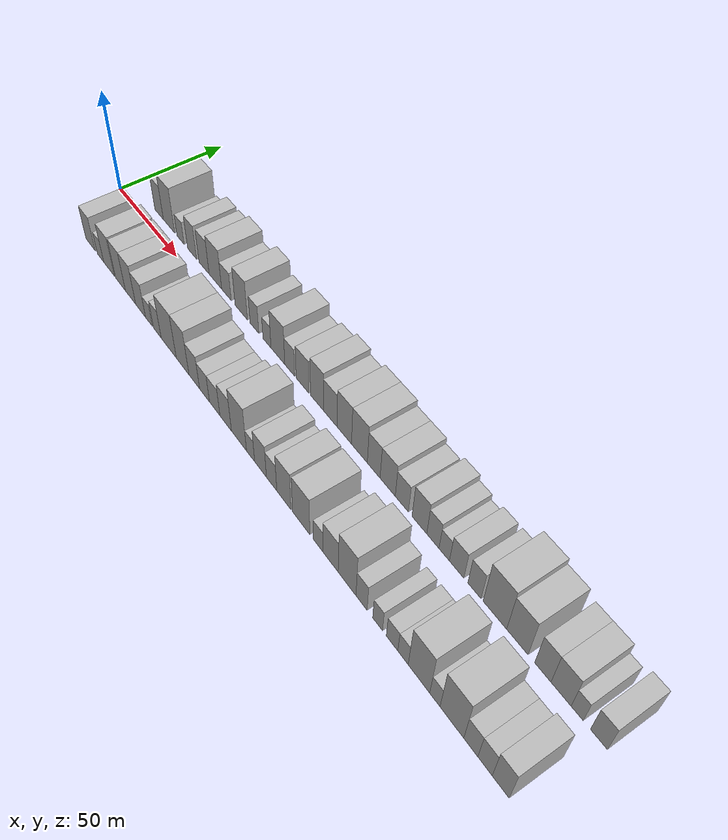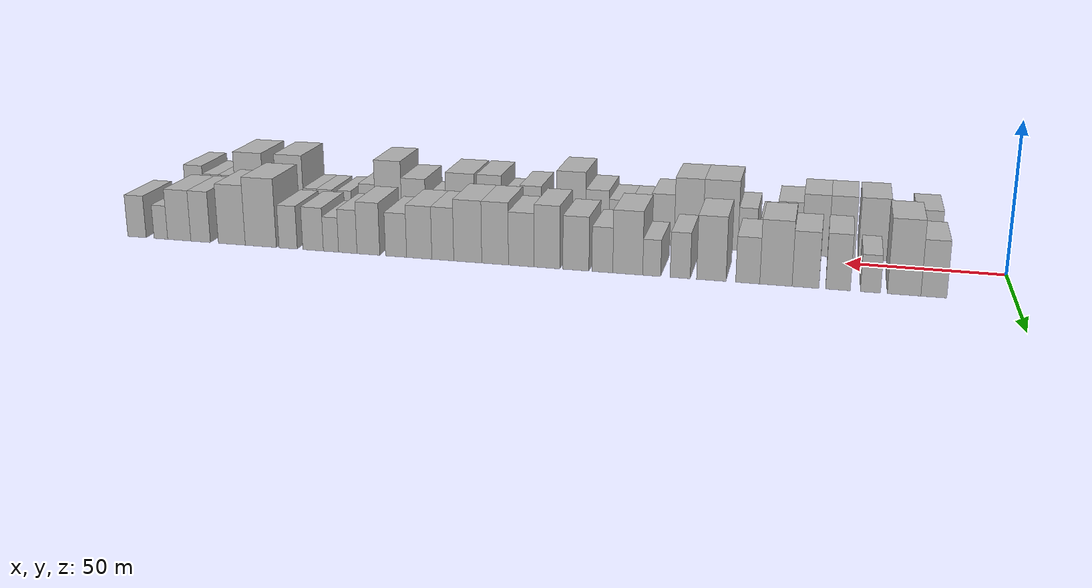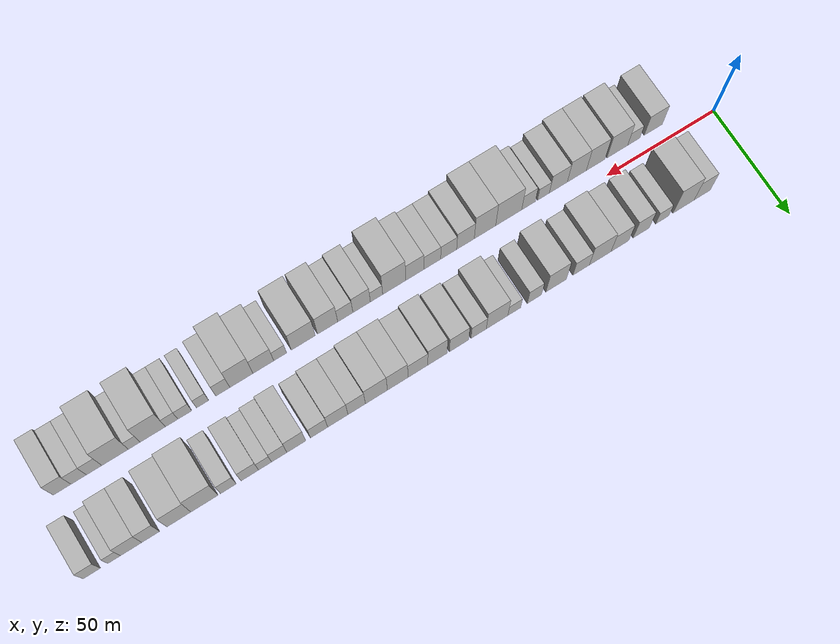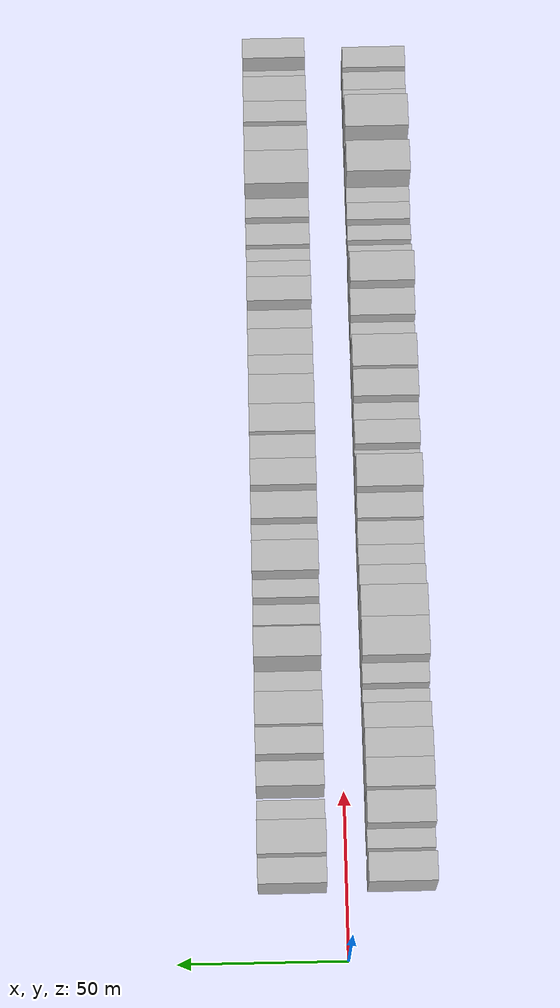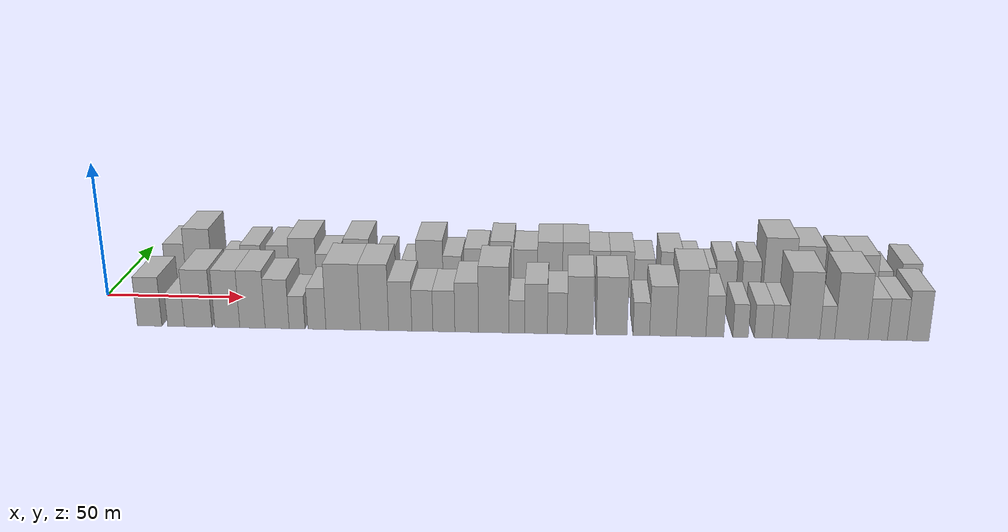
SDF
<sdf version="1.6">
 <world name="default">
  <scene>
   <sky><clouds><speed>12</speed></clouds></sky>
   <ambient>0.4 0.4 0.4 1</ambient>
   <background>0.7 0.7 0.7 1</background>
   <shadows>1</shadows>
  </scene>
  <gravity>0 0 -9.8066</gravity>
  <magnetic_field>6e-06 2.3e-05 -4.2e-05</magnetic_field>
  <physics default="0" name="default_physics" type="ode">
   <ode>
    <solver>
     <type>quick</type>
     <iters>10</iters>
     <sor>1.0</sor>
     <use_dynamic_moi_rescaling>0</use_dynamic_moi_rescaling>
    </solver>
    <constraints>
     <cfm>0</cfm>
     <erp>0.2</erp>
     <contact_max_correcting_vel>100</contact_max_correcting_vel>
     <contact_surface_layer>0.001</contact_surface_layer>
    </constraints>
   </ode>
   <max_step_size>0.004</max_step_size>
   <real_time_factor>1</real_time_factor>
   <real_time_update_rate>250</real_time_update_rate>
  </physics>
  <light name="sun" type="directional">
   <pose>0 0 10 0 0 0</pose>
   <diffuse>0.8 0.8 0.8 1</diffuse>
   <specular>0.2 0.2 0.2 1</specular>
   <attenuation>
    <range>1000</range>
    <constant>0.9</constant>
    <linear>0.01</linear>
    <quadratic>0.001</quadratic>
   </attenuation>
   <direction>-0.5 0.1 -0.9</direction>
  </light>
  <model name="building_1">
   <static>1</static>
   <pose>23.7795 16.0000 0 0.000000 0.000000 1.570796</pose>
   <link name="link">
    <pose>0 0 9.00 0 0 0</pose>
    <collision name="collision"><geometry><box><size>20.0000 7.5590 18.0000</size></box></geometry></collision>
    <visual name="visual">
     <cast_shadows>0</cast_shadows>
     <geometry><box><size>20.0000 7.5590 18.0000</size></box></geometry>
     <material>
      <script>
       <uri>model://HANNAS_wall/materials/scripts</uri>
       <uri>model://HANNAS_wall/materials/textures</uri>
       <name>vrc/HANNAS_wall</name>
      </script>
     </material>
    </visual>
   </link>
  </model>
  <model name="building_2">
   <static>1</static>
   <pose>32.4735 16.0000 0 0.000000 0.000000 1.570796</pose>
   <link name="link">
    <pose>0 0 12.00 0 0 0</pose>
    <collision name="collision"><geometry><box><size>20.0000 9.8290 24.0000</size></box></geometry></collision>
    <visual name="visual">
     <cast_shadows>0</cast_shadows>
     <geometry><box><size>20.0000 9.8290 24.0000</size></box></geometry>
     <material>
      <script>
       <uri>model://HANNAS_wall/materials/scripts</uri>
       <uri>model://HANNAS_wall/materials/textures</uri>
       <name>vrc/HANNAS_wall</name>
      </script>
     </material>
    </visual>
   </link>
  </model>
  <model name="building_3">
   <static>1</static>
   <pose>42.3808 16.0000 0 0.000000 0.000000 1.570796</pose>
   <link name="link">
    <pose>0 0 6.00 0 0 0</pose>
    <collision name="collision"><geometry><box><size>20.0000 5.9856 12.0000</size></box></geometry></collision>
    <visual name="visual">
     <cast_shadows>0</cast_shadows>
     <geometry><box><size>20.0000 5.9856 12.0000</size></box></geometry>
     <material>
      <script>
       <uri>model://HANNAS_wall/materials/scripts</uri>
       <uri>model://HANNAS_wall/materials/textures</uri>
       <name>vrc/HANNAS_wall</name>
      </script>
     </material>
    </visual>
   </link>
  </model>
  <model name="building_4">
   <static>1</static>
   <pose>52.0788 16.0000 0 0.000000 0.000000 1.570796</pose>
   <link name="link">
    <pose>0 0 9.00 0 0 0</pose>
    <collision name="collision"><geometry><box><size>20.0000 7.4105 18.0000</size></box></geometry></collision>
    <visual name="visual">
     <cast_shadows>0</cast_shadows>
     <geometry><box><size>20.0000 7.4105 18.0000</size></box></geometry>
     <material>
      <script>
       <uri>model://HANNAS_wall/materials/scripts</uri>
       <uri>model://HANNAS_wall/materials/textures</uri>
       <name>vrc/HANNAS_wall</name>
      </script>
     </material>
    </visual>
   </link>
  </model>
  <model name="building_5">
   <static>1</static>
   <pose>61.8641 16.0000 0 0.000000 0.000000 1.570796</pose>
   <link name="link">
    <pose>0 0 9.00 0 0 0</pose>
    <collision name="collision"><geometry><box><size>20.0000 8.1600 18.0000</size></box></geometry></collision>
    <visual name="visual">
     <cast_shadows>0</cast_shadows>
     <geometry><box><size>20.0000 8.1600 18.0000</size></box></geometry>
     <material>
      <script>
       <uri>model://HANNAS_wall/materials/scripts</uri>
       <uri>model://HANNAS_wall/materials/textures</uri>
       <name>vrc/HANNAS_wall</name>
      </script>
     </material>
    </visual>
   </link>
  </model>
  <model name="building_6">
   <static>1</static>
   <pose>70.8879 16.0000 0 0.000000 0.000000 1.570796</pose>
   <link name="link">
    <pose>0 0 10.50 0 0 0</pose>
    <collision name="collision"><geometry><box><size>20.0000 9.8876 21.0000</size></box></geometry></collision>
    <visual name="visual">
     <cast_shadows>0</cast_shadows>
     <geometry><box><size>20.0000 9.8876 21.0000</size></box></geometry>
     <material>
      <script>
       <uri>model://HANNAS_wall/materials/scripts</uri>
       <uri>model://HANNAS_wall/materials/textures</uri>
       <name>vrc/HANNAS_wall</name>
      </script>
     </material>
    </visual>
   </link>
  </model>
  <model name="building_7">
   <static>1</static>
   <pose>79.5518 16.0000 0 0.000000 0.000000 1.570796</pose>
   <link name="link">
    <pose>0 0 7.50 0 0 0</pose>
    <collision name="collision"><geometry><box><size>20.0000 7.4401 15.0000</size></box></geometry></collision>
    <visual name="visual">
     <cast_shadows>0</cast_shadows>
     <geometry><box><size>20.0000 7.4401 15.0000</size></box></geometry>
     <material>
      <script>
       <uri>model://HANNAS_wall/materials/scripts</uri>
       <uri>model://HANNAS_wall/materials/textures</uri>
       <name>vrc/HANNAS_wall</name>
      </script>
     </material>
    </visual>
   </link>
  </model>
  <model name="building_8">
   <static>1</static>
   <pose>90.8780 16.0000 0 0.000000 0.000000 1.570796</pose>
   <link name="link">
    <pose>0 0 10.50 0 0 0</pose>
    <collision name="collision"><geometry><box><size>20.0000 9.2123 21.0000</size></box></geometry></collision>
    <visual name="visual">
     <cast_shadows>0</cast_shadows>
     <geometry><box><size>20.0000 9.2123 21.0000</size></box></geometry>
     <material>
      <script>
       <uri>model://HANNAS_wall/materials/scripts</uri>
       <uri>model://HANNAS_wall/materials/textures</uri>
       <name>vrc/HANNAS_wall</name>
      </script>
     </material>
    </visual>
   </link>
  </model>
  <model name="building_9">
   <static>1</static>
   <pose>100.6581 16.0000 0 0.000000 0.000000 1.570796</pose>
   <link name="link">
    <pose>0 0 7.50 0 0 0</pose>
    <collision name="collision"><geometry><box><size>20.0000 6.3479 15.0000</size></box></geometry></collision>
    <visual name="visual">
     <cast_shadows>0</cast_shadows>
     <geometry><box><size>20.0000 6.3479 15.0000</size></box></geometry>
     <material>
      <script>
       <uri>model://HANNAS_wall/materials/scripts</uri>
       <uri>model://HANNAS_wall/materials/textures</uri>
       <name>vrc/HANNAS_wall</name>
      </script>
     </material>
    </visual>
   </link>
  </model>
  <model name="building_10">
   <static>1</static>
   <pose>109.7004 16.0000 0 0.000000 0.000000 1.570796</pose>
   <link name="link">
    <pose>0 0 6.00 0 0 0</pose>
    <collision name="collision"><geometry><box><size>20.0000 5.7369 12.0000</size></box></geometry></collision>
    <visual name="visual">
     <cast_shadows>0</cast_shadows>
     <geometry><box><size>20.0000 5.7369 12.0000</size></box></geometry>
     <material>
      <script>
       <uri>model://HANNAS_wall/materials/scripts</uri>
       <uri>model://HANNAS_wall/materials/textures</uri>
       <name>vrc/HANNAS_wall</name>
      </script>
     </material>
    </visual>
   </link>
  </model>
  <model name="building_11">
   <static>1</static>
   <pose>117.3878 16.0000 0 0.000000 0.000000 1.570796</pose>
   <link name="link">
    <pose>0 0 10.50 0 0 0</pose>
    <collision name="collision"><geometry><box><size>20.0000 9.6378 21.0000</size></box></geometry></collision>
    <visual name="visual">
     <cast_shadows>0</cast_shadows>
     <geometry><box><size>20.0000 9.6378 21.0000</size></box></geometry>
     <material>
      <script>
       <uri>model://HANNAS_wall/materials/scripts</uri>
       <uri>model://HANNAS_wall/materials/textures</uri>
       <name>vrc/HANNAS_wall</name>
      </script>
     </material>
    </visual>
   </link>
  </model>
  <model name="building_12">
   <static>1</static>
   <pose>125.5838 16.0000 0 0.000000 0.000000 1.570796</pose>
   <link name="link">
    <pose>0 0 7.50 0 0 0</pose>
    <collision name="collision"><geometry><box><size>20.0000 6.7542 15.0000</size></box></geometry></collision>
    <visual name="visual">
     <cast_shadows>0</cast_shadows>
     <geometry><box><size>20.0000 6.7542 15.0000</size></box></geometry>
     <material>
      <script>
       <uri>model://HANNAS_wall/materials/scripts</uri>
       <uri>model://HANNAS_wall/materials/textures</uri>
       <name>vrc/HANNAS_wall</name>
      </script>
     </material>
    </visual>
   </link>
  </model>
  <model name="building_13">
   <static>1</static>
   <pose>134.2264 16.0000 0 0.000000 0.000000 1.570796</pose>
   <link name="link">
    <pose>0 0 9.00 0 0 0</pose>
    <collision name="collision"><geometry><box><size>20.0000 8.5309 18.0000</size></box></geometry></collision>
    <visual name="visual">
     <cast_shadows>0</cast_shadows>
     <geometry><box><size>20.0000 8.5309 18.0000</size></box></geometry>
     <material>
      <script>
       <uri>model://HANNAS_wall/materials/scripts</uri>
       <uri>model://HANNAS_wall/materials/textures</uri>
       <name>vrc/HANNAS_wall</name>
      </script>
     </material>
    </visual>
   </link>
  </model>
  <model name="building_14">
   <static>1</static>
   <pose>143.7266 16.0000 0 0.000000 0.000000 1.570796</pose>
   <link name="link">
    <pose>0 0 10.50 0 0 0</pose>
    <collision name="collision"><geometry><box><size>20.0000 8.4695 21.0000</size></box></geometry></collision>
    <visual name="visual">
     <cast_shadows>0</cast_shadows>
     <geometry><box><size>20.0000 8.4695 21.0000</size></box></geometry>
     <material>
      <script>
       <uri>model://HANNAS_wall/materials/scripts</uri>
       <uri>model://HANNAS_wall/materials/textures</uri>
       <name>vrc/HANNAS_wall</name>
      </script>
     </material>
    </visual>
   </link>
  </model>
  <model name="building_15">
   <static>1</static>
   <pose>152.2782 16.0000 0 0.000000 0.000000 1.570796</pose>
   <link name="link">
    <pose>0 0 9.00 0 0 0</pose>
    <collision name="collision"><geometry><box><size>20.0000 8.6337 18.0000</size></box></geometry></collision>
    <visual name="visual">
     <cast_shadows>0</cast_shadows>
     <geometry><box><size>20.0000 8.6337 18.0000</size></box></geometry>
     <material>
      <script>
       <uri>model://HANNAS_wall/materials/scripts</uri>
       <uri>model://HANNAS_wall/materials/textures</uri>
       <name>vrc/HANNAS_wall</name>
      </script>
     </material>
    </visual>
   </link>
  </model>
  <model name="building_16">
   <static>1</static>
   <pose>161.0909 16.0000 0 0.000000 0.000000 1.570796</pose>
   <link name="link">
    <pose>0 0 10.50 0 0 0</pose>
    <collision name="collision"><geometry><box><size>20.0000 8.9917 21.0000</size></box></geometry></collision>
    <visual name="visual">
     <cast_shadows>0</cast_shadows>
     <geometry><box><size>20.0000 8.9917 21.0000</size></box></geometry>
     <material>
      <script>
       <uri>model://HANNAS_wall/materials/scripts</uri>
       <uri>model://HANNAS_wall/materials/textures</uri>
       <name>vrc/HANNAS_wall</name>
      </script>
     </material>
    </visual>
   </link>
  </model>
  <model name="building_17">
   <static>1</static>
   <pose>170.3540 16.0000 0 0.000000 0.000000 1.570796</pose>
   <link name="link">
    <pose>0 0 10.50 0 0 0</pose>
    <collision name="collision"><geometry><box><size>20.0000 9.5345 21.0000</size></box></geometry></collision>
    <visual name="visual">
     <cast_shadows>0</cast_shadows>
     <geometry><box><size>20.0000 9.5345 21.0000</size></box></geometry>
     <material>
      <script>
       <uri>model://HANNAS_wall/materials/scripts</uri>
       <uri>model://HANNAS_wall/materials/textures</uri>
       <name>vrc/HANNAS_wall</name>
      </script>
     </material>
    </visual>
   </link>
  </model>
  <model name="building_18">
   <static>1</static>
   <pose>178.8785 16.0000 0 0.000000 0.000000 1.570796</pose>
   <link name="link">
    <pose>0 0 9.00 0 0 0</pose>
    <collision name="collision"><geometry><box><size>20.0000 7.5146 18.0000</size></box></geometry></collision>
    <visual name="visual">
     <cast_shadows>0</cast_shadows>
     <geometry><box><size>20.0000 7.5146 18.0000</size></box></geometry>
     <material>
      <script>
       <uri>model://HANNAS_wall/materials/scripts</uri>
       <uri>model://HANNAS_wall/materials/textures</uri>
       <name>vrc/HANNAS_wall</name>
      </script>
     </material>
    </visual>
   </link>
  </model>
  <model name="building_19">
   <static>1</static>
   <pose>187.0019 16.0000 0 0.000000 0.000000 1.570796</pose>
   <link name="link">
    <pose>0 0 9.00 0 0 0</pose>
    <collision name="collision"><geometry><box><size>20.0000 8.7322 18.0000</size></box></geometry></collision>
    <visual name="visual">
     <cast_shadows>0</cast_shadows>
     <geometry><box><size>20.0000 8.7322 18.0000</size></box></geometry>
     <material>
      <script>
       <uri>model://HANNAS_wall/materials/scripts</uri>
       <uri>model://HANNAS_wall/materials/textures</uri>
       <name>vrc/HANNAS_wall</name>
      </script>
     </material>
    </visual>
   </link>
  </model>
  <model name="building_20">
   <static>1</static>
   <pose>195.0579 16.0000 0 0.000000 0.000000 1.570796</pose>
   <link name="link">
    <pose>0 0 7.50 0 0 0</pose>
    <collision name="collision"><geometry><box><size>20.0000 7.3798 15.0000</size></box></geometry></collision>
    <visual name="visual">
     <cast_shadows>0</cast_shadows>
     <geometry><box><size>20.0000 7.3798 15.0000</size></box></geometry>
     <material>
      <script>
       <uri>model://HANNAS_wall/materials/scripts</uri>
       <uri>model://HANNAS_wall/materials/textures</uri>
       <name>vrc/HANNAS_wall</name>
      </script>
     </material>
    </visual>
   </link>
  </model>
  <model name="building_21">
   <static>1</static>
   <pose>204.7672 16.0000 0 0.000000 0.000000 1.570796</pose>
   <link name="link">
    <pose>0 0 9.00 0 0 0</pose>
    <collision name="collision"><geometry><box><size>20.0000 8.0388 18.0000</size></box></geometry></collision>
    <visual name="visual">
     <cast_shadows>0</cast_shadows>
     <geometry><box><size>20.0000 8.0388 18.0000</size></box></geometry>
     <material>
      <script>
       <uri>model://HANNAS_wall/materials/scripts</uri>
       <uri>model://HANNAS_wall/materials/textures</uri>
       <name>vrc/HANNAS_wall</name>
      </script>
     </material>
    </visual>
   </link>
  </model>
  <model name="building_22">
   <static>1</static>
   <pose>212.0530 16.0000 0 0.000000 0.000000 1.570796</pose>
   <link name="link">
    <pose>0 0 7.50 0 0 0</pose>
    <collision name="collision"><geometry><box><size>20.0000 6.5327 15.0000</size></box></geometry></collision>
    <visual name="visual">
     <cast_shadows>0</cast_shadows>
     <geometry><box><size>20.0000 6.5327 15.0000</size></box></geometry>
     <material>
      <script>
       <uri>model://HANNAS_wall/materials/scripts</uri>
       <uri>model://HANNAS_wall/materials/textures</uri>
       <name>vrc/HANNAS_wall</name>
      </script>
     </material>
    </visual>
   </link>
  </model>
  <model name="building_23">
   <static>1</static>
   <pose>218.0440 16.0000 0 0.000000 0.000000 1.570796</pose>
   <link name="link">
    <pose>0 0 6.00 0 0 0</pose>
    <collision name="collision"><geometry><box><size>20.0000 5.4495 12.0000</size></box></geometry></collision>
    <visual name="visual">
     <cast_shadows>0</cast_shadows>
     <geometry><box><size>20.0000 5.4495 12.0000</size></box></geometry>
     <material>
      <script>
       <uri>model://HANNAS_wall/materials/scripts</uri>
       <uri>model://HANNAS_wall/materials/textures</uri>
       <name>vrc/HANNAS_wall</name>
      </script>
     </material>
    </visual>
   </link>
  </model>
  <model name="building_24">
   <static>1</static>
   <pose>224.4603 16.0000 0 0.000000 0.000000 1.570796</pose>
   <link name="link">
    <pose>0 0 7.50 0 0 0</pose>
    <collision name="collision"><geometry><box><size>20.0000 7.3830 15.0000</size></box></geometry></collision>
    <visual name="visual">
     <cast_shadows>0</cast_shadows>
     <geometry><box><size>20.0000 7.3830 15.0000</size></box></geometry>
     <material>
      <script>
       <uri>model://HANNAS_wall/materials/scripts</uri>
       <uri>model://HANNAS_wall/materials/textures</uri>
       <name>vrc/HANNAS_wall</name>
      </script>
     </material>
    </visual>
   </link>
  </model>
  <model name="building_25">
   <static>1</static>
   <pose>233.4538 16.0000 0 0.000000 0.000000 1.570796</pose>
   <link name="link">
    <pose>0 0 7.50 0 0 0</pose>
    <collision name="collision"><geometry><box><size>20.0000 6.6040 15.0000</size></box></geometry></collision>
    <visual name="visual">
     <cast_shadows>0</cast_shadows>
     <geometry><box><size>20.0000 6.6040 15.0000</size></box></geometry>
     <material>
      <script>
       <uri>model://HANNAS_wall/materials/scripts</uri>
       <uri>model://HANNAS_wall/materials/textures</uri>
       <name>vrc/HANNAS_wall</name>
      </script>
     </material>
    </visual>
   </link>
  </model>
  <model name="building_26">
   <static>1</static>
   <pose>243.4445 16.0000 0 0.000000 0.000000 1.570796</pose>
   <link name="link">
    <pose>0 0 12.00 0 0 0</pose>
    <collision name="collision"><geometry><box><size>20.0000 11.3775 24.0000</size></box></geometry></collision>
    <visual name="visual">
     <cast_shadows>0</cast_shadows>
     <geometry><box><size>20.0000 11.3775 24.0000</size></box></geometry>
     <material>
      <script>
       <uri>model://HANNAS_wall/materials/scripts</uri>
       <uri>model://HANNAS_wall/materials/textures</uri>
       <name>vrc/HANNAS_wall</name>
      </script>
     </material>
    </visual>
   </link>
  </model>
  <model name="building_27">
   <static>1</static>
   <pose>254.1172 16.0000 0 0.000000 0.000000 1.570796</pose>
   <link name="link">
    <pose>0 0 10.50 0 0 0</pose>
    <collision name="collision"><geometry><box><size>20.0000 9.9678 21.0000</size></box></geometry></collision>
    <visual name="visual">
     <cast_shadows>0</cast_shadows>
     <geometry><box><size>20.0000 9.9678 21.0000</size></box></geometry>
     <material>
      <script>
       <uri>model://HANNAS_wall/materials/scripts</uri>
       <uri>model://HANNAS_wall/materials/textures</uri>
       <name>vrc/HANNAS_wall</name>
      </script>
     </material>
    </visual>
   </link>
  </model>
  <model name="building_28">
   <static>1</static>
   <pose>265.7583 16.0000 0 0.000000 0.000000 1.570796</pose>
   <link name="link">
    <pose>0 0 9.00 0 0 0</pose>
    <collision name="collision"><geometry><box><size>20.0000 7.3144 18.0000</size></box></geometry></collision>
    <visual name="visual">
     <cast_shadows>0</cast_shadows>
     <geometry><box><size>20.0000 7.3144 18.0000</size></box></geometry>
     <material>
      <script>
       <uri>model://HANNAS_wall/materials/scripts</uri>
       <uri>model://HANNAS_wall/materials/textures</uri>
       <name>vrc/HANNAS_wall</name>
      </script>
     </material>
    </visual>
   </link>
  </model>
  <model name="building_29">
   <static>1</static>
   <pose>273.7991 16.0000 0 0.000000 0.000000 1.570796</pose>
   <link name="link">
    <pose>0 0 9.00 0 0 0</pose>
    <collision name="collision"><geometry><box><size>20.0000 8.7670 18.0000</size></box></geometry></collision>
    <visual name="visual">
     <cast_shadows>0</cast_shadows>
     <geometry><box><size>20.0000 8.7670 18.0000</size></box></geometry>
     <material>
      <script>
       <uri>model://HANNAS_wall/materials/scripts</uri>
       <uri>model://HANNAS_wall/materials/textures</uri>
       <name>vrc/HANNAS_wall</name>
      </script>
     </material>
    </visual>
   </link>
  </model>
  <model name="building_30">
   <static>1</static>
   <pose>280.7726 16.0000 0 0.000000 0.000000 1.570796</pose>
   <link name="link">
    <pose>0 0 6.00 0 0 0</pose>
    <collision name="collision"><geometry><box><size>20.0000 5.1800 12.0000</size></box></geometry></collision>
    <visual name="visual">
     <cast_shadows>0</cast_shadows>
     <geometry><box><size>20.0000 5.1800 12.0000</size></box></geometry>
     <material>
      <script>
       <uri>model://HANNAS_wall/materials/scripts</uri>
       <uri>model://HANNAS_wall/materials/textures</uri>
       <name>vrc/HANNAS_wall</name>
      </script>
     </material>
    </visual>
   </link>
  </model>
  <model name="building_31">
   <static>1</static>
   <pose>289.8794 16.0000 0 0.000000 0.000000 1.570796</pose>
   <link name="link">
    <pose>0 0 7.50 0 0 0</pose>
    <collision name="collision"><geometry><box><size>20.0000 7.0337 15.0000</size></box></geometry></collision>
    <visual name="visual">
     <cast_shadows>0</cast_shadows>
     <geometry><box><size>20.0000 7.0337 15.0000</size></box></geometry>
     <material>
      <script>
       <uri>model://HANNAS_wall/materials/scripts</uri>
       <uri>model://HANNAS_wall/materials/textures</uri>
       <name>vrc/HANNAS_wall</name>
      </script>
     </material>
    </visual>
   </link>
  </model>
  <model name="building_32">
   <static>1</static>
   <pose>24.2722 -16.0000 0 0.000000 0.000000 1.570796</pose>
   <link name="link">
    <pose>0 0 9.00 0 0 0</pose>
    <collision name="collision"><geometry><box><size>20.0000 8.5445 18.0000</size></box></geometry></collision>
    <visual name="visual">
     <cast_shadows>0</cast_shadows>
     <geometry><box><size>20.0000 8.5445 18.0000</size></box></geometry>
     <material>
      <script>
       <uri>model://HANNAS_wall/materials/scripts</uri>
       <uri>model://HANNAS_wall/materials/textures</uri>
       <name>vrc/HANNAS_wall</name>
      </script>
     </material>
    </visual>
   </link>
  </model>
  <model name="building_33">
   <static>1</static>
   <pose>33.4394 -16.0000 0 0.000000 0.000000 1.570796</pose>
   <link name="link">
    <pose>0 0 6.00 0 0 0</pose>
    <collision name="collision"><geometry><box><size>20.0000 5.7899 12.0000</size></box></geometry></collision>
    <visual name="visual">
     <cast_shadows>0</cast_shadows>
     <geometry><box><size>20.0000 5.7899 12.0000</size></box></geometry>
     <material>
      <script>
       <uri>model://HANNAS_wall/materials/scripts</uri>
       <uri>model://HANNAS_wall/materials/textures</uri>
       <name>vrc/HANNAS_wall</name>
      </script>
     </material>
    </visual>
   </link>
  </model>
  <model name="building_34">
   <static>1</static>
   <pose>41.1250 -16.0000 0 0.000000 0.000000 1.570796</pose>
   <link name="link">
    <pose>0 0 10.50 0 0 0</pose>
    <collision name="collision"><geometry><box><size>20.0000 9.5813 21.0000</size></box></geometry></collision>
    <visual name="visual">
     <cast_shadows>0</cast_shadows>
     <geometry><box><size>20.0000 9.5813 21.0000</size></box></geometry>
     <material>
      <script>
       <uri>model://HANNAS_wall/materials/scripts</uri>
       <uri>model://HANNAS_wall/materials/textures</uri>
       <name>vrc/HANNAS_wall</name>
      </script>
     </material>
    </visual>
   </link>
  </model>
  <model name="building_35">
   <static>1</static>
   <pose>51.2277 -16.0000 0 0.000000 0.000000 1.570796</pose>
   <link name="link">
    <pose>0 0 10.50 0 0 0</pose>
    <collision name="collision"><geometry><box><size>20.0000 8.6242 21.0000</size></box></geometry></collision>
    <visual name="visual">
     <cast_shadows>0</cast_shadows>
     <geometry><box><size>20.0000 8.6242 21.0000</size></box></geometry>
     <material>
      <script>
       <uri>model://HANNAS_wall/materials/scripts</uri>
       <uri>model://HANNAS_wall/materials/textures</uri>
       <name>vrc/HANNAS_wall</name>
      </script>
     </material>
    </visual>
   </link>
  </model>
  <model name="building_36">
   <static>1</static>
   <pose>59.9242 -16.0000 0 0.000000 0.000000 1.570796</pose>
   <link name="link">
    <pose>0 0 10.50 0 0 0</pose>
    <collision name="collision"><geometry><box><size>20.0000 8.7688 21.0000</size></box></geometry></collision>
    <visual name="visual">
     <cast_shadows>0</cast_shadows>
     <geometry><box><size>20.0000 8.7688 21.0000</size></box></geometry>
     <material>
      <script>
       <uri>model://HANNAS_wall/materials/scripts</uri>
       <uri>model://HANNAS_wall/materials/textures</uri>
       <name>vrc/HANNAS_wall</name>
      </script>
     </material>
    </visual>
   </link>
  </model>
  <model name="building_37">
   <static>1</static>
   <pose>68.4403 -16.0000 0 0.000000 0.000000 1.570796</pose>
   <link name="link">
    <pose>0 0 9.00 0 0 0</pose>
    <collision name="collision"><geometry><box><size>20.0000 8.2633 18.0000</size></box></geometry></collision>
    <visual name="visual">
     <cast_shadows>0</cast_shadows>
     <geometry><box><size>20.0000 8.2633 18.0000</size></box></geometry>
     <material>
      <script>
       <uri>model://HANNAS_wall/materials/scripts</uri>
       <uri>model://HANNAS_wall/materials/textures</uri>
       <name>vrc/HANNAS_wall</name>
      </script>
     </material>
    </visual>
   </link>
  </model>
  <model name="building_38">
   <static>1</static>
   <pose>75.2969 -16.0000 0 0.000000 0.000000 1.570796</pose>
   <link name="link">
    <pose>0 0 6.00 0 0 0</pose>
    <collision name="collision"><geometry><box><size>20.0000 5.4499 12.0000</size></box></geometry></collision>
    <visual name="visual">
     <cast_shadows>0</cast_shadows>
     <geometry><box><size>20.0000 5.4499 12.0000</size></box></geometry>
     <material>
      <script>
       <uri>model://HANNAS_wall/materials/scripts</uri>
       <uri>model://HANNAS_wall/materials/textures</uri>
       <name>vrc/HANNAS_wall</name>
      </script>
     </material>
    </visual>
   </link>
  </model>
  <model name="building_39">
   <static>1</static>
   <pose>82.1391 -16.0000 0 0.000000 0.000000 1.570796</pose>
   <link name="link">
    <pose>0 0 7.50 0 0 0</pose>
    <collision name="collision"><geometry><box><size>20.0000 6.2345 15.0000</size></box></geometry></collision>
    <visual name="visual">
     <cast_shadows>0</cast_shadows>
     <geometry><box><size>20.0000 6.2345 15.0000</size></box></geometry>
     <material>
      <script>
       <uri>model://HANNAS_wall/materials/scripts</uri>
       <uri>model://HANNAS_wall/materials/textures</uri>
       <name>vrc/HANNAS_wall</name>
      </script>
     </material>
    </visual>
   </link>
  </model>
  <model name="building_40">
   <static>1</static>
   <pose>91.1727 -16.0000 0 0.000000 0.000000 1.570796</pose>
   <link name="link">
    <pose>0 0 12.00 0 0 0</pose>
    <collision name="collision"><geometry><box><size>20.0000 11.8327 24.0000</size></box></geometry></collision>
    <visual name="visual">
     <cast_shadows>0</cast_shadows>
     <geometry><box><size>20.0000 11.8327 24.0000</size></box></geometry>
     <material>
      <script>
       <uri>model://HANNAS_wall/materials/scripts</uri>
       <uri>model://HANNAS_wall/materials/textures</uri>
       <name>vrc/HANNAS_wall</name>
      </script>
     </material>
    </visual>
   </link>
  </model>
  <model name="building_41">
   <static>1</static>
   <pose>101.9414 -16.0000 0 0.000000 0.000000 1.570796</pose>
   <link name="link">
    <pose>0 0 12.00 0 0 0</pose>
    <collision name="collision"><geometry><box><size>20.0000 9.7045 24.0000</size></box></geometry></collision>
    <visual name="visual">
     <cast_shadows>0</cast_shadows>
     <geometry><box><size>20.0000 9.7045 24.0000</size></box></geometry>
     <material>
      <script>
       <uri>model://HANNAS_wall/materials/scripts</uri>
       <uri>model://HANNAS_wall/materials/textures</uri>
       <name>vrc/HANNAS_wall</name>
      </script>
     </material>
    </visual>
   </link>
  </model>
  <model name="building_42">
   <static>1</static>
   <pose>110.7455 -16.0000 0 0.000000 0.000000 1.570796</pose>
   <link name="link">
    <pose>0 0 9.00 0 0 0</pose>
    <collision name="collision"><geometry><box><size>20.0000 7.9038 18.0000</size></box></geometry></collision>
    <visual name="visual">
     <cast_shadows>0</cast_shadows>
     <geometry><box><size>20.0000 7.9038 18.0000</size></box></geometry>
     <material>
      <script>
       <uri>model://HANNAS_wall/materials/scripts</uri>
       <uri>model://HANNAS_wall/materials/textures</uri>
       <name>vrc/HANNAS_wall</name>
      </script>
     </material>
    </visual>
   </link>
  </model>
  <model name="building_43">
   <static>1</static>
   <pose>118.2795 -16.0000 0 0.000000 0.000000 1.570796</pose>
   <link name="link">
    <pose>0 0 7.50 0 0 0</pose>
    <collision name="collision"><geometry><box><size>20.0000 7.1643 15.0000</size></box></geometry></collision>
    <visual name="visual">
     <cast_shadows>0</cast_shadows>
     <geometry><box><size>20.0000 7.1643 15.0000</size></box></geometry>
     <material>
      <script>
       <uri>model://HANNAS_wall/materials/scripts</uri>
       <uri>model://HANNAS_wall/materials/textures</uri>
       <name>vrc/HANNAS_wall</name>
      </script>
     </material>
    </visual>
   </link>
  </model>
  <model name="building_44">
   <static>1</static>
   <pose>125.6109 -16.0000 0 0.000000 0.000000 1.570796</pose>
   <link name="link">
    <pose>0 0 7.50 0 0 0</pose>
    <collision name="collision"><geometry><box><size>20.0000 7.4984 15.0000</size></box></geometry></collision>
    <visual name="visual">
     <cast_shadows>0</cast_shadows>
     <geometry><box><size>20.0000 7.4984 15.0000</size></box></geometry>
     <material>
      <script>
       <uri>model://HANNAS_wall/materials/scripts</uri>
       <uri>model://HANNAS_wall/materials/textures</uri>
       <name>vrc/HANNAS_wall</name>
      </script>
     </material>
    </visual>
   </link>
  </model>
  <model name="building_45">
   <static>1</static>
   <pose>133.3753 -16.0000 0 0.000000 0.000000 1.570796</pose>
   <link name="link">
    <pose>0 0 9.00 0 0 0</pose>
    <collision name="collision"><geometry><box><size>20.0000 8.0305 18.0000</size></box></geometry></collision>
    <visual name="visual">
     <cast_shadows>0</cast_shadows>
     <geometry><box><size>20.0000 8.0305 18.0000</size></box></geometry>
     <material>
      <script>
       <uri>model://HANNAS_wall/materials/scripts</uri>
       <uri>model://HANNAS_wall/materials/textures</uri>
       <name>vrc/HANNAS_wall</name>
      </script>
     </material>
    </visual>
   </link>
  </model>
  <model name="building_46">
   <static>1</static>
   <pose>142.5112 -16.0000 0 0.000000 0.000000 1.570796</pose>
   <link name="link">
    <pose>0 0 12.00 0 0 0</pose>
    <collision name="collision"><geometry><box><size>20.0000 10.2413 24.0000</size></box></geometry></collision>
    <visual name="visual">
     <cast_shadows>0</cast_shadows>
     <geometry><box><size>20.0000 10.2413 24.0000</size></box></geometry>
     <material>
      <script>
       <uri>model://HANNAS_wall/materials/scripts</uri>
       <uri>model://HANNAS_wall/materials/textures</uri>
       <name>vrc/HANNAS_wall</name>
      </script>
     </material>
    </visual>
   </link>
  </model>
  <model name="building_47">
   <static>1</static>
   <pose>150.3586 -16.0000 0 0.000000 0.000000 1.570796</pose>
   <link name="link">
    <pose>0 0 6.00 0 0 0</pose>
    <collision name="collision"><geometry><box><size>20.0000 5.4535 12.0000</size></box></geometry></collision>
    <visual name="visual">
     <cast_shadows>0</cast_shadows>
     <geometry><box><size>20.0000 5.4535 12.0000</size></box></geometry>
     <material>
      <script>
       <uri>model://HANNAS_wall/materials/scripts</uri>
       <uri>model://HANNAS_wall/materials/textures</uri>
       <name>vrc/HANNAS_wall</name>
      </script>
     </material>
    </visual>
   </link>
  </model>
  <model name="building_48">
   <static>1</static>
   <pose>156.9252 -16.0000 0 0.000000 0.000000 1.570796</pose>
   <link name="link">
    <pose>0 0 9.00 0 0 0</pose>
    <collision name="collision"><geometry><box><size>20.0000 7.6798 18.0000</size></box></geometry></collision>
    <visual name="visual">
     <cast_shadows>0</cast_shadows>
     <geometry><box><size>20.0000 7.6798 18.0000</size></box></geometry>
     <material>
      <script>
       <uri>model://HANNAS_wall/materials/scripts</uri>
       <uri>model://HANNAS_wall/materials/textures</uri>
       <name>vrc/HANNAS_wall</name>
      </script>
     </material>
    </visual>
   </link>
  </model>
  <model name="building_49">
   <static>1</static>
   <pose>164.0865 -16.0000 0 0.000000 0.000000 1.570796</pose>
   <link name="link">
    <pose>0 0 7.50 0 0 0</pose>
    <collision name="collision"><geometry><box><size>20.0000 6.6427 15.0000</size></box></geometry></collision>
    <visual name="visual">
     <cast_shadows>0</cast_shadows>
     <geometry><box><size>20.0000 6.6427 15.0000</size></box></geometry>
     <material>
      <script>
       <uri>model://HANNAS_wall/materials/scripts</uri>
       <uri>model://HANNAS_wall/materials/textures</uri>
       <name>vrc/HANNAS_wall</name>
      </script>
     </material>
    </visual>
   </link>
  </model>
  <model name="building_50">
   <static>1</static>
   <pose>171.8131 -16.0000 0 0.000000 0.000000 1.570796</pose>
   <link name="link">
    <pose>0 0 10.50 0 0 0</pose>
    <collision name="collision"><geometry><box><size>20.0000 8.8105 21.0000</size></box></geometry></collision>
    <visual name="visual">
     <cast_shadows>0</cast_shadows>
     <geometry><box><size>20.0000 8.8105 21.0000</size></box></geometry>
     <material>
      <script>
       <uri>model://HANNAS_wall/materials/scripts</uri>
       <uri>model://HANNAS_wall/materials/textures</uri>
       <name>vrc/HANNAS_wall</name>
      </script>
     </material>
    </visual>
   </link>
  </model>
  <model name="building_51">
   <static>1</static>
   <pose>182.4260 -16.0000 0 0.000000 0.000000 1.570796</pose>
   <link name="link">
    <pose>0 0 10.50 0 0 0</pose>
    <collision name="collision"><geometry><box><size>20.0000 10.4154 21.0000</size></box></geometry></collision>
    <visual name="visual">
     <cast_shadows>0</cast_shadows>
     <geometry><box><size>20.0000 10.4154 21.0000</size></box></geometry>
     <material>
      <script>
       <uri>model://HANNAS_wall/materials/scripts</uri>
       <uri>model://HANNAS_wall/materials/textures</uri>
       <name>vrc/HANNAS_wall</name>
      </script>
     </material>
    </visual>
   </link>
  </model>
  <model name="building_52">
   <static>1</static>
   <pose>192.4136 -16.0000 0 0.000000 0.000000 1.570796</pose>
   <link name="link">
    <pose>0 0 6.00 0 0 0</pose>
    <collision name="collision"><geometry><box><size>20.0000 5.5596 12.0000</size></box></geometry></collision>
    <visual name="visual">
     <cast_shadows>0</cast_shadows>
     <geometry><box><size>20.0000 5.5596 12.0000</size></box></geometry>
     <material>
      <script>
       <uri>model://HANNAS_wall/materials/scripts</uri>
       <uri>model://HANNAS_wall/materials/textures</uri>
       <name>vrc/HANNAS_wall</name>
      </script>
     </material>
    </visual>
   </link>
  </model>
  <model name="building_53">
   <static>1</static>
   <pose>199.6491 -16.0000 0 0.000000 0.000000 1.570796</pose>
   <link name="link">
    <pose>0 0 9.00 0 0 0</pose>
    <collision name="collision"><geometry><box><size>20.0000 8.9115 18.0000</size></box></geometry></collision>
    <visual name="visual">
     <cast_shadows>0</cast_shadows>
     <geometry><box><size>20.0000 8.9115 18.0000</size></box></geometry>
     <material>
      <script>
       <uri>model://HANNAS_wall/materials/scripts</uri>
       <uri>model://HANNAS_wall/materials/textures</uri>
       <name>vrc/HANNAS_wall</name>
      </script>
     </material>
    </visual>
   </link>
  </model>
  <model name="building_54">
   <static>1</static>
   <pose>209.0632 -16.0000 0 0.000000 0.000000 1.570796</pose>
   <link name="link">
    <pose>0 0 12.00 0 0 0</pose>
    <collision name="collision"><geometry><box><size>20.0000 9.9168 24.0000</size></box></geometry></collision>
    <visual name="visual">
     <cast_shadows>0</cast_shadows>
     <geometry><box><size>20.0000 9.9168 24.0000</size></box></geometry>
     <material>
      <script>
       <uri>model://HANNAS_wall/materials/scripts</uri>
       <uri>model://HANNAS_wall/materials/textures</uri>
       <name>vrc/HANNAS_wall</name>
      </script>
     </material>
    </visual>
   </link>
  </model>
  <model name="building_55">
   <static>1</static>
   <pose>217.0386 -16.0000 0 0.000000 0.000000 1.570796</pose>
   <link name="link">
    <pose>0 0 7.50 0 0 0</pose>
    <collision name="collision"><geometry><box><size>20.0000 6.0341 15.0000</size></box></geometry></collision>
    <visual name="visual">
     <cast_shadows>0</cast_shadows>
     <geometry><box><size>20.0000 6.0341 15.0000</size></box></geometry>
     <material>
      <script>
       <uri>model://HANNAS_wall/materials/scripts</uri>
       <uri>model://HANNAS_wall/materials/textures</uri>
       <name>vrc/HANNAS_wall</name>
      </script>
     </material>
    </visual>
   </link>
  </model>
  <model name="building_56">
   <static>1</static>
   <pose>225.6413 -16.0000 0 0.000000 0.000000 1.570796</pose>
   <link name="link">
    <pose>0 0 6.00 0 0 0</pose>
    <collision name="collision"><geometry><box><size>20.0000 5.1713 12.0000</size></box></geometry></collision>
    <visual name="visual">
     <cast_shadows>0</cast_shadows>
     <geometry><box><size>20.0000 5.1713 12.0000</size></box></geometry>
     <material>
      <script>
       <uri>model://HANNAS_wall/materials/scripts</uri>
       <uri>model://HANNAS_wall/materials/textures</uri>
       <name>vrc/HANNAS_wall</name>
      </script>
     </material>
    </visual>
   </link>
  </model>
  <model name="building_57">
   <static>1</static>
   <pose>233.1741 -16.0000 0 0.000000 0.000000 1.570796</pose>
   <link name="link">
    <pose>0 0 6.00 0 0 0</pose>
    <collision name="collision"><geometry><box><size>20.0000 5.8944 12.0000</size></box></geometry></collision>
    <visual name="visual">
     <cast_shadows>0</cast_shadows>
     <geometry><box><size>20.0000 5.8944 12.0000</size></box></geometry>
     <material>
      <script>
       <uri>model://HANNAS_wall/materials/scripts</uri>
       <uri>model://HANNAS_wall/materials/textures</uri>
       <name>vrc/HANNAS_wall</name>
      </script>
     </material>
    </visual>
   </link>
  </model>
  <model name="building_58">
   <static>1</static>
   <pose>238.7428 -16.0000 0 0.000000 0.000000 1.570796</pose>
   <link name="link">
    <pose>0 0 6.00 0 0 0</pose>
    <collision name="collision"><geometry><box><size>20.0000 5.2430 12.0000</size></box></geometry></collision>
    <visual name="visual">
     <cast_shadows>0</cast_shadows>
     <geometry><box><size>20.0000 5.2430 12.0000</size></box></geometry>
     <material>
      <script>
       <uri>model://HANNAS_wall/materials/scripts</uri>
       <uri>model://HANNAS_wall/materials/textures</uri>
       <name>vrc/HANNAS_wall</name>
      </script>
     </material>
    </visual>
   </link>
  </model>
  <model name="building_59">
   <static>1</static>
   <pose>246.6703 -16.0000 0 0.000000 0.000000 1.570796</pose>
   <link name="link">
    <pose>0 0 12.00 0 0 0</pose>
    <collision name="collision"><geometry><box><size>20.0000 10.6120 24.0000</size></box></geometry></collision>
    <visual name="visual">
     <cast_shadows>0</cast_shadows>
     <geometry><box><size>20.0000 10.6120 24.0000</size></box></geometry>
     <material>
      <script>
       <uri>model://HANNAS_wall/materials/scripts</uri>
       <uri>model://HANNAS_wall/materials/textures</uri>
       <name>vrc/HANNAS_wall</name>
      </script>
     </material>
    </visual>
   </link>
  </model>
  <model name="building_60">
   <static>1</static>
   <pose>254.4450 -16.0000 0 0.000000 0.000000 1.570796</pose>
   <link name="link">
    <pose>0 0 6.00 0 0 0</pose>
    <collision name="collision"><geometry><box><size>20.0000 4.9373 12.0000</size></box></geometry></collision>
    <visual name="visual">
     <cast_shadows>0</cast_shadows>
     <geometry><box><size>20.0000 4.9373 12.0000</size></box></geometry>
     <material>
      <script>
       <uri>model://HANNAS_wall/materials/scripts</uri>
       <uri>model://HANNAS_wall/materials/textures</uri>
       <name>vrc/HANNAS_wall</name>
      </script>
     </material>
    </visual>
   </link>
  </model>
  <model name="building_61">
   <static>1</static>
   <pose>262.4564 -16.0000 0 0.000000 0.000000 1.570796</pose>
   <link name="link">
    <pose>0 0 12.00 0 0 0</pose>
    <collision name="collision"><geometry><box><size>20.0000 11.0855 24.0000</size></box></geometry></collision>
    <visual name="visual">
     <cast_shadows>0</cast_shadows>
     <geometry><box><size>20.0000 11.0855 24.0000</size></box></geometry>
     <material>
      <script>
       <uri>model://HANNAS_wall/materials/scripts</uri>
       <uri>model://HANNAS_wall/materials/textures</uri>
       <name>vrc/HANNAS_wall</name>
      </script>
     </material>
    </visual>
   </link>
  </model>
  <model name="building_62">
   <static>1</static>
   <pose>271.1821 -16.0000 0 0.000000 0.000000 1.570796</pose>
   <link name="link">
    <pose>0 0 7.50 0 0 0</pose>
    <collision name="collision"><geometry><box><size>20.0000 6.3659 15.0000</size></box></geometry></collision>
    <visual name="visual">
     <cast_shadows>0</cast_shadows>
     <geometry><box><size>20.0000 6.3659 15.0000</size></box></geometry>
     <material>
      <script>
       <uri>model://HANNAS_wall/materials/scripts</uri>
       <uri>model://HANNAS_wall/materials/textures</uri>
       <name>vrc/HANNAS_wall</name>
      </script>
     </material>
    </visual>
   </link>
  </model>
  <model name="building_63">
   <static>1</static>
   <pose>277.5419 -16.0000 0 0.000000 0.000000 1.570796</pose>
   <link name="link">
    <pose>0 0 7.50 0 0 0</pose>
    <collision name="collision"><geometry><box><size>20.0000 6.3537 15.0000</size></box></geometry></collision>
    <visual name="visual">
     <cast_shadows>0</cast_shadows>
     <geometry><box><size>20.0000 6.3537 15.0000</size></box></geometry>
     <material>
      <script>
       <uri>model://HANNAS_wall/materials/scripts</uri>
       <uri>model://HANNAS_wall/materials/textures</uri>
       <name>vrc/HANNAS_wall</name>
      </script>
     </material>
    </visual>
   </link>
  </model>
  <model name="building_64">
   <static>1</static>
   <pose>284.3782 -16.0000 0 0.000000 0.000000 1.570796</pose>
   <link name="link">
    <pose>0 0 9.00 0 0 0</pose>
    <collision name="collision"><geometry><box><size>20.0000 7.3188 18.0000</size></box></geometry></collision>
    <visual name="visual">
     <cast_shadows>0</cast_shadows>
     <geometry><box><size>20.0000 7.3188 18.0000</size></box></geometry>
     <material>
      <script>
       <uri>model://HANNAS_wall/materials/scripts</uri>
       <uri>model://HANNAS_wall/materials/textures</uri>
       <name>vrc/HANNAS_wall</name>
      </script>
     </material>
    </visual>
   </link>
  </model>
 </world>
</sdf>
